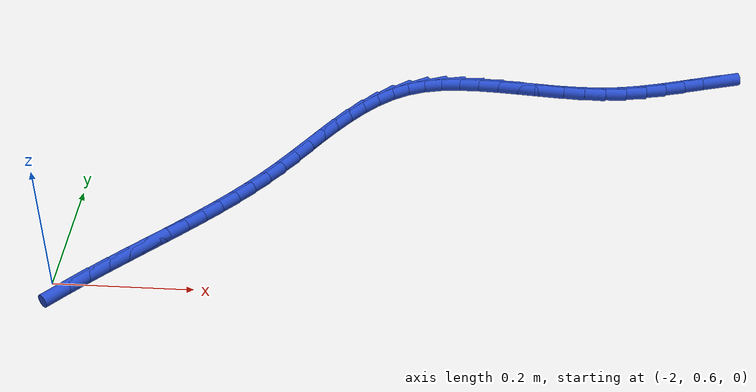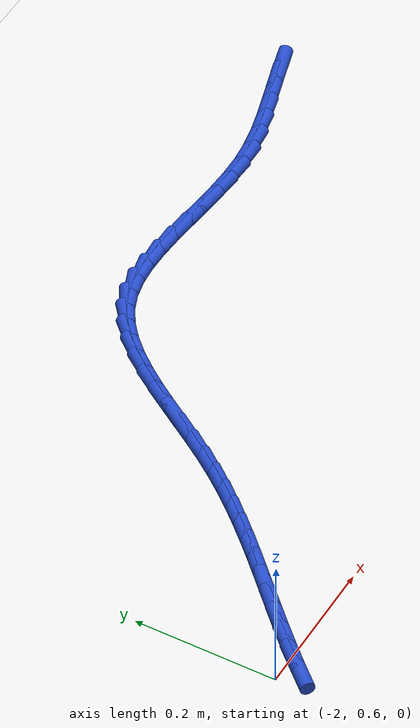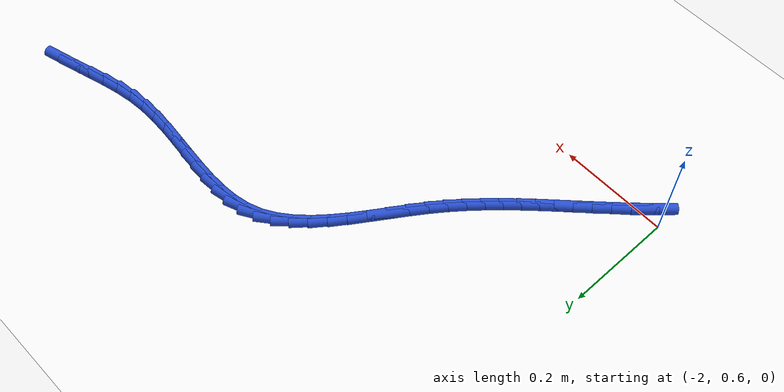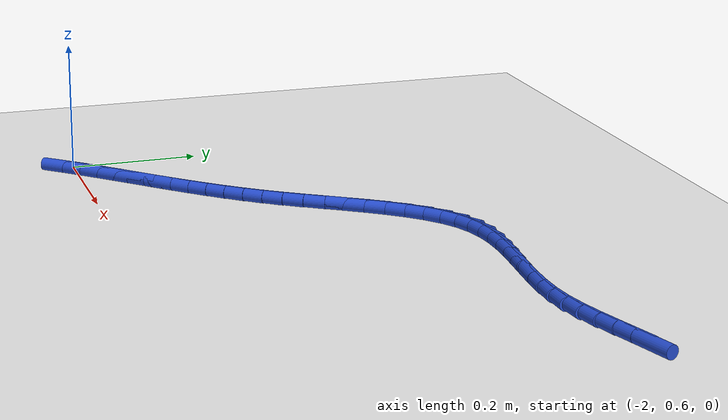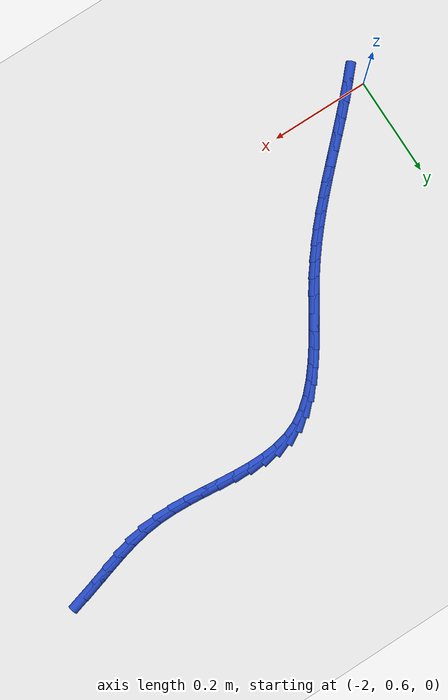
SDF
<sdf version="1.6">
 <world name="default">
  <model name="ground_plane">
   <static>1</static>
   <link name="link">
    <collision name="collision">
     <geometry><plane><normal>0 0 1</normal><size>100 100</size></plane></geometry>
     <surface><friction><ode><mu>100</mu><mu2>50</mu2></ode></friction></surface>
    </collision>
    <visual name="visual">
     <cast_shadows>0</cast_shadows>
     <geometry><plane><normal>0 0 1</normal><size>100 100</size></plane></geometry>
     <material>
      <script><uri>file://media/materials/scripts/gazebo.material</uri><name>Gazebo/WhiteGlow</name></script>
     </material>
    </visual>
   </link>
  </model>
  <model name="line">
   <link name="link_55">
    <pose>-1.0379554488708378 1.1321339840744558 0.01 0 1.57 0.2803987848785397</pose>
    <collision name="collision">
     <geometry><cylinder><radius>0.01</radius><length>0.08</length></cylinder></geometry>
    </collision>
    <visual name="visual">
     <material>
      <script><name>Gazebo/Blue</name><uri>file://media/materials/scripts/gazebo.material</uri></script>
     </material>
     <geometry><cylinder><radius>0.01</radius><length>0.08</length></cylinder></geometry>
    </visual>
   </link>
   <link name="link_56">
    <pose>-1.0680226956017076 1.1234750339079418 0.01 0 1.57 0.2955357587619733</pose>
    <collision name="collision">
     <geometry><cylinder><radius>0.01</radius><length>0.08</length></cylinder></geometry>
    </collision>
    <visual name="visual">
     <material>
      <script><name>Gazebo/Blue</name><uri>file://media/materials/scripts/gazebo.material</uri></script>
     </material>
     <geometry><cylinder><radius>0.01</radius><length>0.08</length></cylinder></geometry>
    </visual>
   </link>
   <link name="link_57">
    <pose>-1.0981716064483589 1.1142961514789969 0.01 0 1.57 0.2849739989582786</pose>
    <collision name="collision">
     <geometry><cylinder><radius>0.01</radius><length>0.08</length></cylinder></geometry>
    </collision>
    <visual name="visual">
     <material>
      <script><name>Gazebo/Blue</name><uri>file://media/materials/scripts/gazebo.material</uri></script>
     </material>
     <geometry><cylinder><radius>0.01</radius><length>0.08</length></cylinder></geometry>
    </visual>
   </link>
   <link name="link_58">
    <pose>-1.1285581922751007 1.10539448106833 0.01 0 1.57 0.24901828403818713</pose>
    <collision name="collision">
     <geometry><cylinder><radius>0.01</radius><length>0.08</length></cylinder></geometry>
    </collision>
    <visual name="visual">
     <material>
      <script><name>Gazebo/Blue</name><uri>file://media/materials/scripts/gazebo.material</uri></script>
     </material>
     <geometry><cylinder><radius>0.01</radius><length>0.08</length></cylinder></geometry>
    </visual>
   </link>
   <link name="link_59">
    <pose>-1.1593384639462412 1.0975671669566491 0.01 0 1.57 0.18785804597891959</pose>
    <collision name="collision">
     <geometry><cylinder><radius>0.01</radius><length>0.08</length></cylinder></geometry>
    </collision>
    <visual name="visual">
     <material>
      <script><name>Gazebo/Blue</name><uri>file://media/materials/scripts/gazebo.material</uri></script>
     </material>
     <geometry><cylinder><radius>0.01</radius><length>0.08</length></cylinder></geometry>
    </visual>
   </link>
   <link name="link_60">
    <pose>-1.1906684323260897 1.091611353424664 0.01 0 1.57 0.10277971191584295</pose>
    <collision name="collision">
     <geometry><cylinder><radius>0.01</radius><length>0.08</length></cylinder></geometry>
    </collision>
    <visual name="visual">
     <material>
      <script><name>Gazebo/Blue</name><uri>file://media/materials/scripts/gazebo.material</uri></script>
     </material>
     <geometry><cylinder><radius>0.01</radius><length>0.08</length></cylinder></geometry>
    </visual>
   </link>
   <link name="link_61">
    <pose>-1.2226995123110567 1.0883075666803956 0.01 0 1.57 0.016059116760396376</pose>
    <collision name="collision">
     <geometry><cylinder><radius>0.01</radius><length>0.08</length></cylinder></geometry>
    </collision>
    <visual name="visual">
     <material>
      <script><name>Gazebo/Blue</name><uri>file://media/materials/scripts/gazebo.material</uri></script>
     </material>
     <geometry><cylinder><radius>0.01</radius><length>0.08</length></cylinder></geometry>
    </visual>
   </link>
   <link name="link_62">
    <pose>-1.2554022488459764 1.0877823444644523 0.01 0 1.57 -0.04604871069688419</pose>
    <collision name="collision">
     <geometry><cylinder><radius>0.01</radius><length>0.08</length></cylinder></geometry>
    </collision>
    <visual name="visual">
     <material>
      <script><name>Gazebo/Blue</name><uri>file://media/materials/scripts/gazebo.material</uri></script>
     </material>
     <geometry><cylinder><radius>0.01</radius><length>0.08</length></cylinder></geometry>
    </visual>
   </link>
   <link name="link_63">
    <pose>-1.288510948698966 1.0893080359593565 0.01 0 1.57 -0.08379796268698758</pose>
    <collision name="collision">
     <geometry><cylinder><radius>0.01</radius><length>0.08</length></cylinder></geometry>
    </collision>
    <visual name="visual">
     <material>
      <script><name>Gazebo/Blue</name><uri>file://media/materials/scripts/gazebo.material</uri></script>
     </material>
     <geometry><cylinder><radius>0.01</radius><length>0.08</length></cylinder></geometry>
    </visual>
   </link>
   <link name="link_64">
    <pose>-1.321744000851151 1.0920994349105482 0.01 0 1.57 -0.09860050907768565</pose>
    <collision name="collision">
     <geometry><cylinder><radius>0.01</radius><length>0.08</length></cylinder></geometry>
    </collision>
    <visual name="visual">
     <material>
      <script><name>Gazebo/Blue</name><uri>file://media/materials/scripts/gazebo.material</uri></script>
     </material>
     <geometry><cylinder><radius>0.01</radius><length>0.08</length></cylinder></geometry>
    </visual>
   </link>
   <link name="link_65">
    <pose>-1.3548197942836582 1.0953713350634695 0.01 0 1.57 -0.09066602689863554</pose>
    <collision name="collision">
     <geometry><cylinder><radius>0.01</radius><length>0.08</length></cylinder></geometry>
    </collision>
    <visual name="visual">
     <material>
      <script><name>Gazebo/Blue</name><uri>file://media/materials/scripts/gazebo.material</uri></script>
     </material>
     <geometry><cylinder><radius>0.01</radius><length>0.08</length></cylinder></geometry>
    </visual>
   </link>
   <link name="link_66">
    <pose>-1.3874567179776145 1.0983385301635609 0.01 0 1.57 -0.05875101340758058</pose>
    <collision name="collision">
     <geometry><cylinder><radius>0.01</radius><length>0.08</length></cylinder></geometry>
    </collision>
    <visual name="visual">
     <material>
      <script><name>Gazebo/Blue</name><uri>file://media/materials/scripts/gazebo.material</uri></script>
     </material>
     <geometry><cylinder><radius>0.01</radius><length>0.08</length></cylinder></geometry>
    </visual>
   </link>
   <link name="link_67">
    <pose>-1.4193731609141456 1.1002158139562634 0.01 0 1.57 -7.007201091386498e-05</pose>
    <collision name="collision">
     <geometry><cylinder><radius>0.01</radius><length>0.08</length></cylinder></geometry>
    </collision>
    <visual name="visual">
     <material>
      <script><name>Gazebo/Blue</name><uri>file://media/materials/scripts/gazebo.material</uri></script>
     </material>
     <geometry><cylinder><radius>0.01</radius><length>0.08</length></cylinder></geometry>
    </visual>
   </link>
   <link name="link_68">
    <pose>-1.4502875120743794 1.1002179801870189 0.01 0 1.57 0.08947023308897722</pose>
    <collision name="collision">
     <geometry><cylinder><radius>0.01</radius><length>0.08</length></cylinder></geometry>
    </collision>
    <visual name="visual">
     <material>
      <script><name>Gazebo/Blue</name><uri>file://media/materials/scripts/gazebo.material</uri></script>
     </material>
     <geometry><cylinder><radius>0.01</radius><length>0.08</length></cylinder></geometry>
    </visual>
   </link>
   <link name="link_69">
    <pose>-1.4799181604394418 1.0975598226012677 0.01 0 1.57 0.21414669175013792</pose>
    <collision name="collision">
     <geometry><cylinder><radius>0.01</radius><length>0.08</length></cylinder></geometry>
    </collision>
    <visual name="visual">
     <material>
      <script><name>Gazebo/Blue</name><uri>file://media/materials/scripts/gazebo.material</uri></script>
     </material>
     <geometry><cylinder><radius>0.01</radius><length>0.08</length></cylinder></geometry>
    </visual>
   </link>
   <link name="link_70">
    <pose>-1.507983494990459 1.091456134944451 0.01 0 1.57 0.3751554025104609</pose>
    <collision name="collision">
     <geometry><cylinder><radius>0.01</radius><length>0.08</length></cylinder></geometry>
    </collision>
    <visual name="visual">
     <material>
      <script><name>Gazebo/Blue</name><uri>file://media/materials/scripts/gazebo.material</uri></script>
     </material>
     <geometry><cylinder><radius>0.01</radius><length>0.08</length></cylinder></geometry>
    </visual>
   </link>
   <link name="link_71">
    <pose>-1.5342050818976651 1.0811299149137172 0.01 0 1.57 0.5470140040294686</pose>
    <collision name="collision">
     <geometry><cylinder><radius>0.01</radius><length>0.08</length></cylinder></geometry>
    </collision>
    <visual name="visual">
     <material>
      <script><name>Gazebo/Blue</name><uri>file://media/materials/scripts/gazebo.material</uri></script>
     </material>
     <geometry><cylinder><radius>0.01</radius><length>0.08</length></cylinder></geometry>
    </visual>
   </link>
   <link name="link_72">
    <pose>-1.5585078981549156 1.066329395726436 0.01 0 1.57 0.690367694907702</pose>
    <collision name="collision">
     <geometry><cylinder><radius>0.01</radius><length>0.08</length></cylinder></geometry>
    </collision>
    <visual name="visual">
     <material>
      <script><name>Gazebo/Blue</name><uri>file://media/materials/scripts/gazebo.material</uri></script>
     </material>
     <geometry><cylinder><radius>0.01</radius><length>0.08</length></cylinder></geometry>
    </visual>
   </link>
   <link name="link_73">
    <pose>-1.5811397838943713 1.0476364888939351 0.01 0 1.57 0.8014243645590473</pose>
    <collision name="collision">
     <geometry><cylinder><radius>0.01</radius><length>0.08</length></cylinder></geometry>
    </collision>
    <visual name="visual">
     <material>
      <script><name>Gazebo/Blue</name><uri>file://media/materials/scripts/gazebo.material</uri></script>
     </material>
     <geometry><cylinder><radius>0.01</radius><length>0.08</length></cylinder></geometry>
    </visual>
   </link>
   <link name="link_74">
    <pose>-1.602377257196347 1.0257071564463331 0.01 0 1.57 0.8834532606658572</pose>
    <collision name="collision">
     <geometry><cylinder><radius>0.01</radius><length>0.08</length></cylinder></geometry>
    </collision>
    <visual name="visual">
     <material>
      <script><name>Gazebo/Blue</name><uri>file://media/materials/scripts/gazebo.material</uri></script>
     </material>
     <geometry><cylinder><radius>0.01</radius><length>0.08</length></cylinder></geometry>
    </visual>
   </link>
   <link name="link_75">
    <pose>-1.6224968361411563 1.0011973604137494 0.01 0 1.57 0.9406835358884854</pose>
    <collision name="collision">
     <geometry><cylinder><radius>0.01</radius><length>0.08</length></cylinder></geometry>
    </collision>
    <visual name="visual">
     <material>
      <script><name>Gazebo/Blue</name><uri>file://media/materials/scripts/gazebo.material</uri></script>
     </material>
     <geometry><cylinder><radius>0.01</radius><length>0.08</length></cylinder></geometry>
    </visual>
   </link>
   <link name="link_76">
    <pose>-1.6417750388091146 0.9747630628263031 0.01 0 1.57 0.9767013112191187</pose>
    <collision name="collision">
     <geometry><cylinder><radius>0.01</radius><length>0.08</length></cylinder></geometry>
    </collision>
    <visual name="visual">
     <material>
      <script><name>Gazebo/Blue</name><uri>file://media/materials/scripts/gazebo.material</uri></script>
     </material>
     <geometry><cylinder><radius>0.01</radius><length>0.08</length></cylinder></geometry>
    </visual>
   </link>
   <link name="link_77">
    <pose>-1.660488383280535 0.9470602257141137 0.01 0 1.57 0.9939251014364646</pose>
    <collision name="collision">
     <geometry><cylinder><radius>0.01</radius><length>0.08</length></cylinder></geometry>
    </collision>
    <visual name="visual">
     <material>
      <script><name>Gazebo/Blue</name><uri>file://media/materials/scripts/gazebo.material</uri></script>
     </material>
     <geometry><cylinder><radius>0.01</radius><length>0.08</length></cylinder></geometry>
    </visual>
   </link>
   <link name="link_78">
    <pose>-1.6789133876357327 0.9187448111072994 0.01 0 1.57 0.9935174724527626</pose>
    <collision name="collision">
     <geometry><cylinder><radius>0.01</radius><length>0.08</length></cylinder></geometry>
    </collision>
    <visual name="visual">
     <material>
      <script><name>Gazebo/Blue</name><uri>file://media/materials/scripts/gazebo.material</uri></script>
     </material>
     <geometry><cylinder><radius>0.01</radius><length>0.08</length></cylinder></geometry>
    </visual>
   </link>
   <link name="link_79">
    <pose>-1.6973265699550217 0.8904727810359805 0.01 0 1.57 0.9753961742157522</pose>
    <collision name="collision">
     <geometry><cylinder><radius>0.01</radius><length>0.08</length></cylinder></geometry>
    </collision>
    <visual name="visual">
     <material>
      <script><name>Gazebo/Blue</name><uri>file://media/materials/scripts/gazebo.material</uri></script>
     </material>
     <geometry><cylinder><radius>0.01</radius><length>0.08</length></cylinder></geometry>
    </visual>
   </link>
   <link name="link_80">
    <pose>-1.7160044483187162 0.8629000975302753 0.01 0 1.57 0.9403858076895832</pose>
    <collision name="collision">
     <geometry><cylinder><radius>0.01</radius><length>0.08</length></cylinder></geometry>
    </collision>
    <visual name="visual">
     <material>
      <script><name>Gazebo/Blue</name><uri>file://media/materials/scripts/gazebo.material</uri></script>
     </material>
     <geometry><cylinder><radius>0.01</radius><length>0.08</length></cylinder></geometry>
    </visual>
   </link>
   <link name="link_81">
    <pose>-1.735195123193013 0.836602267743155 0.01 0 1.57 0.9023214359320492</pose>
    <collision name="collision">
     <geometry><cylinder><radius>0.01</radius><length>0.08</length></cylinder></geometry>
    </collision>
    <visual name="visual">
     <material>
      <script><name>Gazebo/Blue</name><uri>file://media/materials/scripts/gazebo.material</uri></script>
     </material>
     <geometry><cylinder><radius>0.01</radius><length>0.08</length></cylinder></geometry>
    </visual>
   </link>
   <link name="link_82">
    <pose>-1.7549478134463403 0.8115917327500077 0.01 0 1.57 0.8682364260406324</pose>
    <collision name="collision">
     <geometry><cylinder><radius>0.01</radius><length>0.08</length></cylinder></geometry>
    </collision>
    <visual name="visual">
     <material>
      <script><name>Gazebo/Blue</name><uri>file://media/materials/scripts/gazebo.material</uri></script>
     </material>
     <geometry><cylinder><radius>0.01</radius><length>0.08</length></cylinder></geometry>
    </visual>
   </link>
   <link name="link_83">
    <pose>-1.7752267793182364 0.7876404019608346 0.01 0 1.57 0.8389336748338694</pose>
    <collision name="collision">
     <geometry><cylinder><radius>0.01</radius><length>0.08</length></cylinder></geometry>
    </collision>
    <visual name="visual">
     <material>
      <script><name>Gazebo/Blue</name><uri>file://media/materials/scripts/gazebo.material</uri></script>
     </material>
     <geometry><cylinder><radius>0.01</radius><length>0.08</length></cylinder></geometry>
    </visual>
   </link>
   <link name="link_84">
    <pose>-1.7959959621585808 0.7645192819572637 0.01 0 1.57 0.8150297560540121</pose>
    <collision name="collision">
     <geometry><cylinder><radius>0.01</radius><length>0.08</length></cylinder></geometry>
    </collision>
    <visual name="visual">
     <material>
      <script><name>Gazebo/Blue</name><uri>file://media/materials/scripts/gazebo.material</uri></script>
     </material>
     <geometry><cylinder><radius>0.01</radius><length>0.08</length></cylinder></geometry>
    </visual>
   </link>
   <link name="link_85">
    <pose>-1.8172193033172523 0.741999379320921 0.01 0 1.57 0.7969584622737059</pose>
    <collision name="collision">
     <geometry><cylinder><radius>0.01</radius><length>0.08</length></cylinder></geometry>
    </collision>
    <visual name="visual">
     <material>
      <script><name>Gazebo/Blue</name><uri>file://media/materials/scripts/gazebo.material</uri></script>
     </material>
     <geometry><cylinder><radius>0.01</radius><length>0.08</length></cylinder></geometry>
    </visual>
   </link>
   <link name="link_86">
    <pose>-1.838860744144129 0.719851700633434 0.01 0 1.57 0.7849658540253914</pose>
    <collision name="collision">
     <geometry><cylinder><radius>0.01</radius><length>0.08</length></cylinder></geometry>
    </collision>
    <visual name="visual">
     <material>
      <script><name>Gazebo/Blue</name><uri>file://media/materials/scripts/gazebo.material</uri></script>
     </material>
     <geometry><cylinder><radius>0.01</radius><length>0.08</length></cylinder></geometry>
    </visual>
   </link>
   <link name="link_87">
    <pose>-1.8608842259890914 0.6978472524764293 0.01 0 1.57 0.7791172021853421</pose>
    <collision name="collision">
     <geometry><cylinder><radius>0.01</radius><length>0.08</length></cylinder></geometry>
    </collision>
    <visual name="visual">
     <material>
      <script><name>Gazebo/Blue</name><uri>file://media/materials/scripts/gazebo.material</uri></script>
     </material>
     <geometry><cylinder><radius>0.01</radius><length>0.08</length></cylinder></geometry>
    </visual>
   </link>
   <link name="link_88">
    <pose>-1.8832536902020167 0.6757570414315341 0.01 0 1.57 0.7793093175313941</pose>
    <collision name="collision">
     <geometry><cylinder><radius>0.01</radius><length>0.08</length></cylinder></geometry>
    </collision>
    <visual name="visual">
     <material>
      <script><name>Gazebo/Blue</name><uri>file://media/materials/scripts/gazebo.material</uri></script>
     </material>
     <geometry><cylinder><radius>0.01</radius><length>0.08</length></cylinder></geometry>
    </visual>
   </link>
   <link name="link_89">
    <pose>-1.905932306299285 0.6533529305026965 0.01 0 1.57 0.7851315054118214</pose>
    <collision name="collision">
     <geometry><cylinder><radius>0.01</radius><length>0.08</length></cylinder></geometry>
    </collision>
    <visual name="visual">
     <material>
      <script><name>Gazebo/Blue</name><uri>file://media/materials/scripts/gazebo.material</uri></script>
     </material>
     <geometry><cylinder><radius>0.01</radius><length>0.08</length></cylinder></geometry>
    </visual>
   </link>
   <link name="link_90">
    <pose>-1.9288156210161 0.6304818165699478 0.01 0 1.57 0.7960976173682731</pose>
    <collision name="collision">
     <geometry><cylinder><radius>0.01</radius><length>0.08</length></cylinder></geometry>
    </collision>
    <visual name="visual">
     <material>
      <script><name>Gazebo/Blue</name><uri>file://media/materials/scripts/gazebo.material</uri></script>
     </material>
     <geometry><cylinder><radius>0.01</radius><length>0.08</length></cylinder></geometry>
    </visual>
   </link>
   <link name="link_91">
    <pose>-1.9516798295959394 0.6071230282897836 0.01 0 1.57 0.8121767006450406</pose>
    <collision name="collision">
     <geometry><cylinder><radius>0.01</radius><length>0.08</length></cylinder></geometry>
    </collision>
    <visual name="visual">
     <material>
      <script><name>Gazebo/Blue</name><uri>file://media/materials/scripts/gazebo.material</uri></script>
     </material>
     <geometry><cylinder><radius>0.01</radius><length>0.08</length></cylinder></geometry>
    </visual>
   </link>
   <link name="link_92">
    <pose>-1.9742889509256005 0.5832694051389091 0.01 0 1.57 0.8335079623067432</pose>
    <collision name="collision">
     <geometry><cylinder><radius>0.01</radius><length>0.08</length></cylinder></geometry>
    </collision>
    <visual name="visual">
     <material>
      <script><name>Gazebo/Blue</name><uri>file://media/materials/scripts/gazebo.material</uri></script>
     </material>
     <geometry><cylinder><radius>0.01</radius><length>0.08</length></cylinder></geometry>
    </visual>
   </link>
  </model>
 </world>
</sdf>
